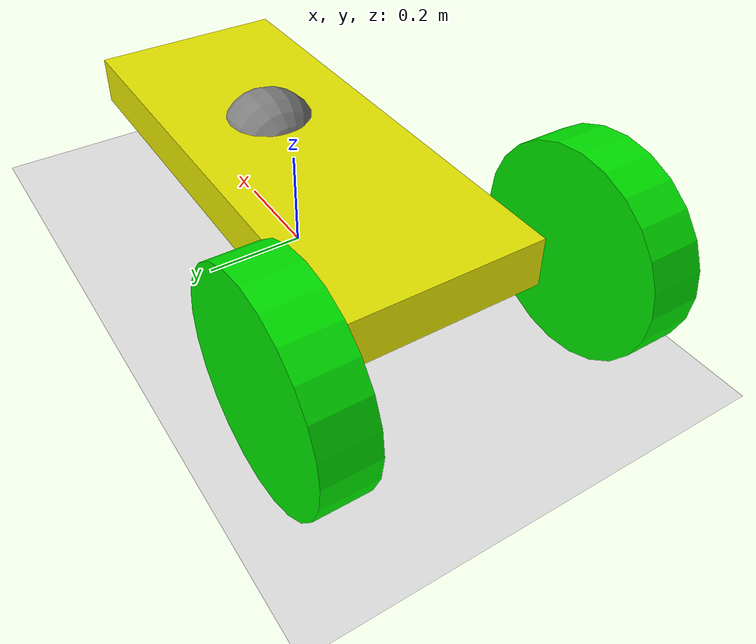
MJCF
<mujoco>
	<option gravity="0 0 -9.81" />
  <visual>
    <headlight diffuse="0.6 0.6 0.6" ambient="0.3 0.3 0.3" specular="0 0 0"/>
    <rgba haze="0.15 0.25 0.35 1"/>
    <global azimuth="-130" elevation="-20"/>
  </visual>
	<worldbody>
        <light diffuse=".5 .5 .5" pos="0 0 3" dir="0 0 -1"/>
		<geom type="plane" size="5 5 0.1" rgba=".9 .9 .9 1"/>
		<body name = "chassis" pos="0 0 0.2" euler='0 90 0'>
			<joint type="free"/>
			<geom type="box" size=".05 .2 .5" rgba=".9 .9 0 1"/>
			<site name="marker" pos = "0 0 0.1" size="0.1" />
			<body name="left-tire" pos="0 0.3 -0.5" euler='90 0 0'>
				<joint name = "left-wheel" type="hinge" axis="0 0 -1"/>
				<geom type="cylinder" size=".2 0.05" rgba="0 .9 0 1"/>
			</body>
			<body name="right-tire" pos="0 -0.3 -0.5" euler='90 0 0'>
				<joint name = "right-wheel" type="hinge" axis="0 0 -1"/>
				<geom type="cylinder" size=".2 0.05" rgba="0 .9 0 1"/>
			</body>
		</body>
	</worldbody>
	<sensor>
		<framepos objtype="site" objname="marker"/>
	</sensor>
	<actuator>
		<velocity name="left-velocity-servo" joint="left-wheel" kv="100"/>
		<velocity name="right-velocity-servo" joint="right-wheel" kv="100"/>
	</actuator>
</mujoco>
